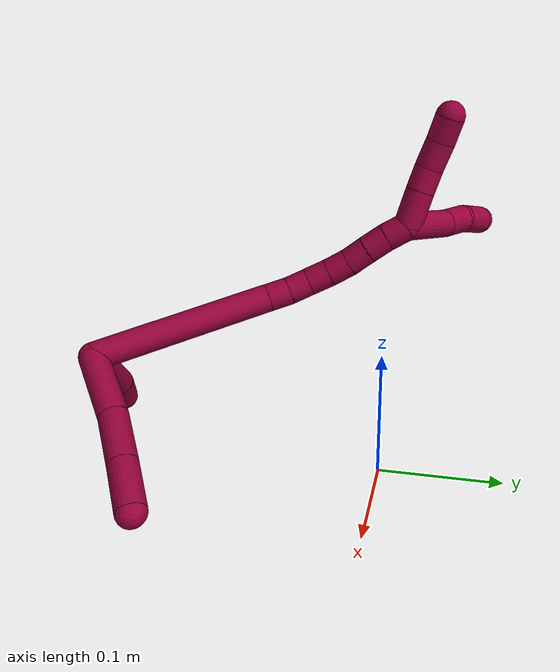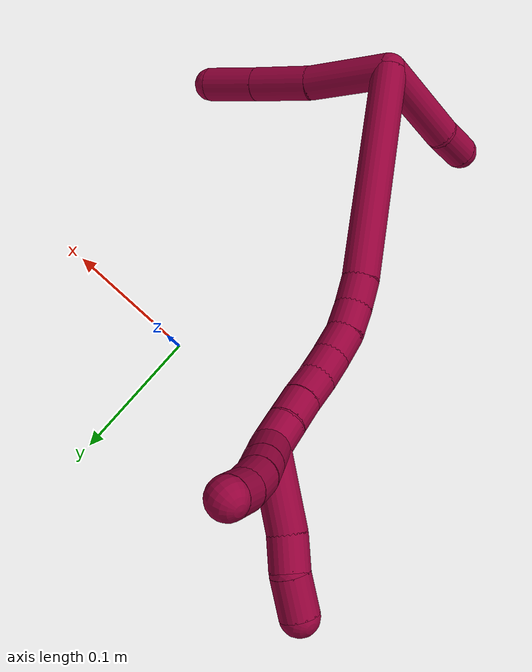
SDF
<sdf version="1.7">
 <world name="default">
  <model name="8">
   <static>0</static>
   <link name="8">
    <collision name="collision-cylinder-e_1_2_8">
     <pose>-0.00885 0.014765 -0.026249 -2.62919 -0.285815 1.00458</pose>
     <geometry><cylinder><radius>0.0125</radius><length>0.062781</length></cylinder></geometry>
     <surface>
      <friction><ode><mu>1.16</mu><mu2>1.16</mu2><slip1>0</slip1><slip2>0</slip2></ode></friction>
      <contact><ode><kp>1e+06</kp><kd>1</kd><max_vel>0</max_vel><min_depth>0.001</min_depth></ode></contact>
     </surface>
    </collision>
    <visual name="visual-cylinder-e_1_2_8">
     <pose>-0.00885 0.014765 -0.026249 -2.62919 -0.285815 1.00458</pose>
     <geometry><cylinder><radius>0.0125</radius><length>0.062781</length></cylinder></geometry>
     <material><ambient>0.584314 0 0.227451 1</ambient></material>
    </visual>
    <collision name="collision-cylinder-e_2_8_9">
     <pose>-0.021704 0.039766 -0.072588 -2.67041 -0.175743 0.703483</pose>
     <geometry><cylinder><radius>0.0125</radius><length>0.045799</length></cylinder></geometry>
     <surface>
      <friction><ode><mu>1.16</mu><mu2>1.16</mu2><slip1>0</slip1><slip2>0</slip2></ode></friction>
      <contact><ode><kp>1e+06</kp><kd>1</kd><max_vel>0</max_vel><min_depth>0.001</min_depth></ode></contact>
     </surface>
    </collision>
    <visual name="visual-cylinder-e_2_8_9">
     <pose>-0.021704 0.039766 -0.072588 -2.67041 -0.175743 0.703483</pose>
     <geometry><cylinder><radius>0.0125</radius><length>0.045799</length></cylinder></geometry>
     <material><ambient>0.584314 0 0.227451 1</ambient></material>
    </visual>
    <collision name="collision-cylinder-e_3_9_6">
     <pose>-0.029097 0.058977 -0.111031 -2.68669 -0.164365 0.683785</pose>
     <geometry><cylinder><radius>0.0125</radius><length>0.041421</length></cylinder></geometry>
     <surface>
      <friction><ode><mu>1.16</mu><mu2>1.16</mu2><slip1>0</slip1><slip2>0</slip2></ode></friction>
      <contact><ode><kp>1e+06</kp><kd>1</kd><max_vel>0</max_vel><min_depth>0.001</min_depth></ode></contact>
     </surface>
    </collision>
    <visual name="visual-cylinder-e_3_9_6">
     <pose>-0.029097 0.058977 -0.111031 -2.68669 -0.164365 0.683785</pose>
     <geometry><cylinder><radius>0.0125</radius><length>0.041421</length></cylinder></geometry>
     <material><ambient>0.584314 0 0.227451 1</ambient></material>
    </visual>
    <collision name="collision-cylinder-e_1_2_10">
     <pose>-0.02747 -0.021138 0.005791 1.30341 -0.897363 -0.703973</pose>
     <geometry><cylinder><radius>0.0125</radius><length>0.070285</length></cylinder></geometry>
     <surface>
      <friction><ode><mu>1.16</mu><mu2>1.16</mu2><slip1>0</slip1><slip2>0</slip2></ode></friction>
      <contact><ode><kp>1e+06</kp><kd>1</kd><max_vel>0</max_vel><min_depth>0.001</min_depth></ode></contact>
     </surface>
    </collision>
    <visual name="visual-cylinder-e_1_2_10">
     <pose>-0.02747 -0.021138 0.005791 1.30341 -0.897363 -0.703973</pose>
     <geometry><cylinder><radius>0.0125</radius><length>0.070285</length></cylinder></geometry>
     <material><ambient>0.584314 0 0.227451 1</ambient></material>
    </visual>
    <collision name="collision-cylinder-e_2_10_5">
     <pose>-0.065499 -0.052729 0.011429 1.58544 -0.790448 -0.800908</pose>
     <geometry><cylinder><radius>0.0125</radius><length>0.029715</length></cylinder></geometry>
     <surface>
      <friction><ode><mu>1.16</mu><mu2>1.16</mu2><slip1>0</slip1><slip2>0</slip2></ode></friction>
      <contact><ode><kp>1e+06</kp><kd>1</kd><max_vel>0</max_vel><min_depth>0.001</min_depth></ode></contact>
     </surface>
    </collision>
    <visual name="visual-cylinder-e_2_10_5">
     <pose>-0.065499 -0.052729 0.011429 1.58544 -0.790448 -0.800908</pose>
     <geometry><cylinder><radius>0.0125</radius><length>0.029715</length></cylinder></geometry>
     <material><ambient>0.584314 0 0.227451 1</ambient></material>
    </visual>
    <collision name="collision-cylinder-e_1_2_11">
     <pose>-0.048395 0.046567 0.042671 -0.829024 -0.653794 0.296193</pose>
     <geometry><cylinder><radius>0.0125</radius><length>0.15914</length></cylinder></geometry>
     <surface>
      <friction><ode><mu>1.16</mu><mu2>1.16</mu2><slip1>0</slip1><slip2>0</slip2></ode></friction>
      <contact><ode><kp>1e+06</kp><kd>1</kd><max_vel>0</max_vel><min_depth>0.001</min_depth></ode></contact>
     </surface>
    </collision>
    <visual name="visual-cylinder-e_1_2_11">
     <pose>-0.048395 0.046567 0.042671 -0.829024 -0.653794 0.296193</pose>
     <geometry><cylinder><radius>0.0125</radius><length>0.15914</length></cylinder></geometry>
     <material><ambient>0.584314 0 0.227451 1</ambient></material>
    </visual>
    <collision name="collision-cylinder-e_2_11_12">
     <pose>-0.102457 0.100036 0.090215 -0.956063 -0.590917 0.312816</pose>
     <geometry><cylinder><radius>0.0125</radius><length>0.020347</length></cylinder></geometry>
     <surface>
      <friction><ode><mu>1.16</mu><mu2>1.16</mu2><slip1>0</slip1><slip2>0</slip2></ode></friction>
      <contact><ode><kp>1e+06</kp><kd>1</kd><max_vel>0</max_vel><min_depth>0.001</min_depth></ode></contact>
     </surface>
    </collision>
    <visual name="visual-cylinder-e_2_11_12">
     <pose>-0.102457 0.100036 0.090215 -0.956063 -0.590917 0.312816</pose>
     <geometry><cylinder><radius>0.0125</radius><length>0.020347</length></cylinder></geometry>
     <material><ambient>0.584314 0 0.227451 1</ambient></material>
    </visual>
    <collision name="collision-cylinder-e_3_12_13">
     <pose>-0.11241 0.114446 0.100123 -0.980082 -0.442612 0.238896</pose>
     <geometry><cylinder><radius>0.0125</radius><length>0.020009</length></cylinder></geometry>
     <surface>
      <friction><ode><mu>1.16</mu><mu2>1.16</mu2><slip1>0</slip1><slip2>0</slip2></ode></friction>
      <contact><ode><kp>1e+06</kp><kd>1</kd><max_vel>0</max_vel><min_depth>0.001</min_depth></ode></contact>
     </surface>
    </collision>
    <visual name="visual-cylinder-e_3_12_13">
     <pose>-0.11241 0.114446 0.100123 -0.980082 -0.442612 0.238896</pose>
     <geometry><cylinder><radius>0.0125</radius><length>0.020009</length></cylinder></geometry>
     <material><ambient>0.584314 0 0.227451 1</ambient></material>
    </visual>
    <collision name="collision-cylinder-e_4_13_14">
     <pose>-0.120033 0.130718 0.109224 -1.13637 -0.332641 0.213527</pose>
     <geometry><cylinder><radius>0.0125</radius><length>0.020443</length></cylinder></geometry>
     <surface>
      <friction><ode><mu>1.16</mu><mu2>1.16</mu2><slip1>0</slip1><slip2>0</slip2></ode></friction>
      <contact><ode><kp>1e+06</kp><kd>1</kd><max_vel>0</max_vel><min_depth>0.001</min_depth></ode></contact>
     </surface>
    </collision>
    <visual name="visual-cylinder-e_4_13_14">
     <pose>-0.120033 0.130718 0.109224 -1.13637 -0.332641 0.213527</pose>
     <geometry><cylinder><radius>0.0125</radius><length>0.020443</length></cylinder></geometry>
     <material><ambient>0.584314 0 0.227451 1</ambient></material>
    </visual>
    <collision name="collision-cylinder-e_5_14_15">
     <pose>-0.125849 0.148275 0.117368 -1.13661 -0.250363 0.160372</pose>
     <geometry><cylinder><radius>0.0125</radius><length>0.020009</length></cylinder></geometry>
     <surface>
      <friction><ode><mu>1.16</mu><mu2>1.16</mu2><slip1>0</slip1><slip2>0</slip2></ode></friction>
      <contact><ode><kp>1e+06</kp><kd>1</kd><max_vel>0</max_vel><min_depth>0.001</min_depth></ode></contact>
     </surface>
    </collision>
    <visual name="visual-cylinder-e_5_14_15">
     <pose>-0.125849 0.148275 0.117368 -1.13661 -0.250363 0.160372</pose>
     <geometry><cylinder><radius>0.0125</radius><length>0.020009</length></cylinder></geometry>
     <material><ambient>0.584314 0 0.227451 1</ambient></material>
    </visual>
    <collision name="collision-cylinder-e_6_15_16">
     <pose>-0.129453 0.166034 0.125734 -1.12465 -0.112791 0.071125</pose>
     <geometry><cylinder><radius>0.0125</radius><length>0.020005</length></cylinder></geometry>
     <surface>
      <friction><ode><mu>1.16</mu><mu2>1.16</mu2><slip1>0</slip1><slip2>0</slip2></ode></friction>
      <contact><ode><kp>1e+06</kp><kd>1</kd><max_vel>0</max_vel><min_depth>0.001</min_depth></ode></contact>
     </surface>
    </collision>
    <visual name="visual-cylinder-e_6_15_16">
     <pose>-0.129453 0.166034 0.125734 -1.12465 -0.112791 0.071125</pose>
     <geometry><cylinder><radius>0.0125</radius><length>0.020005</length></cylinder></geometry>
     <material><ambient>0.584314 0 0.227451 1</ambient></material>
    </visual>
    <collision name="collision-cylinder-e_7_16_17">
     <pose>-0.132202 0.183788 0.134522 -1.09762 -0.162927 0.099763</pose>
     <geometry><cylinder><radius>0.0125</radius><length>0.020011</length></cylinder></geometry>
     <surface>
      <friction><ode><mu>1.16</mu><mu2>1.16</mu2><slip1>0</slip1><slip2>0</slip2></ode></friction>
      <contact><ode><kp>1e+06</kp><kd>1</kd><max_vel>0</max_vel><min_depth>0.001</min_depth></ode></contact>
     </surface>
    </collision>
    <visual name="visual-cylinder-e_7_16_17">
     <pose>-0.132202 0.183788 0.134522 -1.09762 -0.162927 0.099763</pose>
     <geometry><cylinder><radius>0.0125</radius><length>0.020011</length></cylinder></geometry>
     <material><ambient>0.584314 0 0.227451 1</ambient></material>
    </visual>
    <collision name="collision-cylinder-e_8_17_1">
     <pose>-0.136384 0.201402 0.143012 -1.14609 -0.258304 0.167219</pose>
     <geometry><cylinder><radius>0.0125</radius><length>0.020036</length></cylinder></geometry>
     <surface>
      <friction><ode><mu>1.16</mu><mu2>1.16</mu2><slip1>0</slip1><slip2>0</slip2></ode></friction>
      <contact><ode><kp>1e+06</kp><kd>1</kd><max_vel>0</max_vel><min_depth>0.001</min_depth></ode></contact>
     </surface>
    </collision>
    <visual name="visual-cylinder-e_8_17_1">
     <pose>-0.136384 0.201402 0.143012 -1.14609 -0.258304 0.167219</pose>
     <geometry><cylinder><radius>0.0125</radius><length>0.020036</length></cylinder></geometry>
     <material><ambient>0.584314 0 0.227451 1</ambient></material>
    </visual>
    <collision name="collision-cylinder-e_1_1_18">
     <pose>-0.132719 0.220367 0.15803 -0.743499 0.393782 -0.155229</pose>
     <geometry><cylinder><radius>0.0125</radius><length>0.032443</length></cylinder></geometry>
     <surface>
      <friction><ode><mu>1.16</mu><mu2>1.16</mu2><slip1>0</slip1><slip2>0</slip2></ode></friction>
      <contact><ode><kp>1e+06</kp><kd>1</kd><max_vel>0</max_vel><min_depth>0.001</min_depth></ode></contact>
     </surface>
    </collision>
    <visual name="visual-cylinder-e_1_1_18">
     <pose>-0.132719 0.220367 0.15803 -0.743499 0.393782 -0.155229</pose>
     <geometry><cylinder><radius>0.0125</radius><length>0.032443</length></cylinder></geometry>
     <material><ambient>0.584314 0 0.227451 1</ambient></material>
    </visual>
    <collision name="collision-cylinder-e_2_18_19">
     <pose>-0.122655 0.237214 0.176158 -0.756872 0.374562 -0.150408</pose>
     <geometry><cylinder><radius>0.0125</radius><length>0.020993</length></cylinder></geometry>
     <surface>
      <friction><ode><mu>1.16</mu><mu2>1.16</mu2><slip1>0</slip1><slip2>0</slip2></ode></friction>
      <contact><ode><kp>1e+06</kp><kd>1</kd><max_vel>0</max_vel><min_depth>0.001</min_depth></ode></contact>
     </surface>
    </collision>
    <visual name="visual-cylinder-e_2_18_19">
     <pose>-0.122655 0.237214 0.176158 -0.756872 0.374562 -0.150408</pose>
     <geometry><cylinder><radius>0.0125</radius><length>0.020993</length></cylinder></geometry>
     <material><ambient>0.584314 0 0.227451 1</ambient></material>
    </visual>
    <collision name="collision-cylinder-e_3_19_20">
     <pose>-0.113929 0.252728 0.190249 -0.899942 0.409958 -0.200167</pose>
     <geometry><cylinder><radius>0.0125</radius><length>0.024517</length></cylinder></geometry>
     <surface>
      <friction><ode><mu>1.16</mu><mu2>1.16</mu2><slip1>0</slip1><slip2>0</slip2></ode></friction>
      <contact><ode><kp>1e+06</kp><kd>1</kd><max_vel>0</max_vel><min_depth>0.001</min_depth></ode></contact>
     </surface>
    </collision>
    <visual name="visual-cylinder-e_3_19_20">
     <pose>-0.113929 0.252728 0.190249 -0.899942 0.409958 -0.200167</pose>
     <geometry><cylinder><radius>0.0125</radius><length>0.024517</length></cylinder></geometry>
     <material><ambient>0.584314 0 0.227451 1</ambient></material>
    </visual>
    <collision name="collision-cylinder-e_4_20_4">
     <pose>-0.103533 0.269495 0.20251 -0.98588 0.523391 -0.285788</pose>
     <geometry><cylinder><radius>0.0125</radius><length>0.022048</length></cylinder></geometry>
     <surface>
      <friction><ode><mu>1.16</mu><mu2>1.16</mu2><slip1>0</slip1><slip2>0</slip2></ode></friction>
      <contact><ode><kp>1e+06</kp><kd>1</kd><max_vel>0</max_vel><min_depth>0.001</min_depth></ode></contact>
     </surface>
    </collision>
    <visual name="visual-cylinder-e_4_20_4">
     <pose>-0.103533 0.269495 0.20251 -0.98588 0.523391 -0.285788</pose>
     <geometry><cylinder><radius>0.0125</radius><length>0.022048</length></cylinder></geometry>
     <material><ambient>0.584314 0 0.227451 1</ambient></material>
    </visual>
    <collision name="collision-cylinder-e_1_1_21">
     <pose>-0.15984 0.214659 0.16108 -0.305001 -0.955915 0.158897</pose>
     <geometry><cylinder><radius>0.0125</radius><length>0.051164</length></cylinder></geometry>
     <surface>
      <friction><ode><mu>1.16</mu><mu2>1.16</mu2><slip1>0</slip1><slip2>0</slip2></ode></friction>
      <contact><ode><kp>1e+06</kp><kd>1</kd><max_vel>0</max_vel><min_depth>0.001</min_depth></ode></contact>
     </surface>
    </collision>
    <visual name="visual-cylinder-e_1_1_21">
     <pose>-0.15984 0.214659 0.16108 -0.305001 -0.955915 0.158897</pose>
     <geometry><cylinder><radius>0.0125</radius><length>0.051164</length></cylinder></geometry>
     <material><ambient>0.584314 0 0.227451 1</ambient></material>
    </visual>
    <collision name="collision-cylinder-e_2_21_22">
     <pose>-0.188874 0.223219 0.181971 -0.544667 -0.795874 0.233722</pose>
     <geometry><cylinder><radius>0.0125</radius><length>0.022779</length></cylinder></geometry>
     <surface>
      <friction><ode><mu>1.16</mu><mu2>1.16</mu2><slip1>0</slip1><slip2>0</slip2></ode></friction>
      <contact><ode><kp>1e+06</kp><kd>1</kd><max_vel>0</max_vel><min_depth>0.001</min_depth></ode></contact>
     </surface>
    </collision>
    <visual name="visual-cylinder-e_2_21_22">
     <pose>-0.188874 0.223219 0.181971 -0.544667 -0.795874 0.233722</pose>
     <geometry><cylinder><radius>0.0125</radius><length>0.022779</length></cylinder></geometry>
     <material><ambient>0.584314 0 0.227451 1</ambient></material>
    </visual>
    <collision name="collision-cylinder-e_3_22_3">
     <pose>-0.208276 0.228796 0.195171 -0.222951 -1.04436 0.128655</pose>
     <geometry><cylinder><radius>0.0125</radius><length>0.026057</length></cylinder></geometry>
     <surface>
      <friction><ode><mu>1.16</mu><mu2>1.16</mu2><slip1>0</slip1><slip2>0</slip2></ode></friction>
      <contact><ode><kp>1e+06</kp><kd>1</kd><max_vel>0</max_vel><min_depth>0.001</min_depth></ode></contact>
     </surface>
    </collision>
    <visual name="visual-cylinder-e_3_22_3">
     <pose>-0.208276 0.228796 0.195171 -0.222951 -1.04436 0.128655</pose>
     <geometry><cylinder><radius>0.0125</radius><length>0.026057</length></cylinder></geometry>
     <material><ambient>0.584314 0 0.227451 1</ambient></material>
    </visual>
    <collision name="collision-sphere-3">
     <pose>-0.21954 0.230243 0.201556 0 -0 0</pose>
     <geometry><sphere><radius>0.0125</radius></sphere></geometry>
     <surface>
      <friction><ode><mu>1.16</mu><mu2>1.16</mu2><slip1>0</slip1><slip2>0</slip2></ode></friction>
      <contact><ode><kp>1e+06</kp><kd>1</kd><max_vel>0</max_vel><min_depth>0.001</min_depth></ode></contact>
     </surface>
    </collision>
    <visual name="visual-sphere-3">
     <pose>-0.21954 0.230243 0.201556 0 -0 0</pose>
     <geometry><sphere><radius>0.0125</radius></sphere></geometry>
     <material><ambient>0.584314 0 0.227451 1</ambient></material>
    </visual>
    <collision name="collision-sphere-22">
     <pose>-0.197011 0.227348 0.188787 0 -0 0</pose>
     <geometry><sphere><radius>0.0125</radius></sphere></geometry>
     <surface>
      <friction><ode><mu>1.16</mu><mu2>1.16</mu2><slip1>0</slip1><slip2>0</slip2></ode></friction>
      <contact><ode><kp>1e+06</kp><kd>1</kd><max_vel>0</max_vel><min_depth>0.001</min_depth></ode></contact>
     </surface>
    </collision>
    <visual name="visual-sphere-22">
     <pose>-0.197011 0.227348 0.188787 0 -0 0</pose>
     <geometry><sphere><radius>0.0125</radius></sphere></geometry>
     <material><ambient>0.584314 0 0.227451 1</ambient></material>
    </visual>
    <collision name="collision-sphere-21">
     <pose>-0.180736 0.21909 0.175156 0 -0 0</pose>
     <geometry><sphere><radius>0.0125</radius></sphere></geometry>
     <surface>
      <friction><ode><mu>1.16</mu><mu2>1.16</mu2><slip1>0</slip1><slip2>0</slip2></ode></friction>
      <contact><ode><kp>1e+06</kp><kd>1</kd><max_vel>0</max_vel><min_depth>0.001</min_depth></ode></contact>
     </surface>
    </collision>
    <visual name="visual-sphere-21">
     <pose>-0.180736 0.21909 0.175156 0 -0 0</pose>
     <geometry><sphere><radius>0.0125</radius></sphere></geometry>
     <material><ambient>0.584314 0 0.227451 1</ambient></material>
    </visual>
    <collision name="collision-sphere-4">
     <pose>-0.098023 0.277456 0.207782 0 -0 0</pose>
     <geometry><sphere><radius>0.0125</radius></sphere></geometry>
     <surface>
      <friction><ode><mu>1.16</mu><mu2>1.16</mu2><slip1>0</slip1><slip2>0</slip2></ode></friction>
      <contact><ode><kp>1e+06</kp><kd>1</kd><max_vel>0</max_vel><min_depth>0.001</min_depth></ode></contact>
     </surface>
    </collision>
    <visual name="visual-sphere-4">
     <pose>-0.098023 0.277456 0.207782 0 -0 0</pose>
     <geometry><sphere><radius>0.0125</radius></sphere></geometry>
     <material><ambient>0.584314 0 0.227451 1</ambient></material>
    </visual>
    <collision name="collision-sphere-20">
     <pose>-0.109043 0.261534 0.197238 0 -0 0</pose>
     <geometry><sphere><radius>0.0125</radius></sphere></geometry>
     <surface>
      <friction><ode><mu>1.16</mu><mu2>1.16</mu2><slip1>0</slip1><slip2>0</slip2></ode></friction>
      <contact><ode><kp>1e+06</kp><kd>1</kd><max_vel>0</max_vel><min_depth>0.001</min_depth></ode></contact>
     </surface>
    </collision>
    <visual name="visual-sphere-20">
     <pose>-0.109043 0.261534 0.197238 0 -0 0</pose>
     <geometry><sphere><radius>0.0125</radius></sphere></geometry>
     <material><ambient>0.584314 0 0.227451 1</ambient></material>
    </visual>
    <collision name="collision-sphere-5">
     <pose>-0.076058 -0.06318 0.011276 0 -0 0</pose>
     <geometry><sphere><radius>0.0125</radius></sphere></geometry>
     <surface>
      <friction><ode><mu>1.16</mu><mu2>1.16</mu2><slip1>0</slip1><slip2>0</slip2></ode></friction>
      <contact><ode><kp>1e+06</kp><kd>1</kd><max_vel>0</max_vel><min_depth>0.001</min_depth></ode></contact>
     </surface>
    </collision>
    <visual name="visual-sphere-5">
     <pose>-0.076058 -0.06318 0.011276 0 -0 0</pose>
     <geometry><sphere><radius>0.0125</radius></sphere></geometry>
     <material><ambient>0.584314 0 0.227451 1</ambient></material>
    </visual>
    <collision name="collision-sphere-10">
     <pose>-0.05494 -0.042277 0.011582 0 -0 0</pose>
     <geometry><sphere><radius>0.0125</radius></sphere></geometry>
     <surface>
      <friction><ode><mu>1.16</mu><mu2>1.16</mu2><slip1>0</slip1><slip2>0</slip2></ode></friction>
      <contact><ode><kp>1e+06</kp><kd>1</kd><max_vel>0</max_vel><min_depth>0.001</min_depth></ode></contact>
     </surface>
    </collision>
    <visual name="visual-sphere-10">
     <pose>-0.05494 -0.042277 0.011582 0 -0 0</pose>
     <geometry><sphere><radius>0.0125</radius></sphere></geometry>
     <material><ambient>0.584314 0 0.227451 1</ambient></material>
    </visual>
    <collision name="collision-sphere-6">
     <pose>-0.032485 0.067954 -0.129384 0 -0 0</pose>
     <geometry><sphere><radius>0.0125</radius></sphere></geometry>
     <surface>
      <friction><ode><mu>1.16</mu><mu2>1.16</mu2><slip1>0</slip1><slip2>0</slip2></ode></friction>
      <contact><ode><kp>1e+06</kp><kd>1</kd><max_vel>0</max_vel><min_depth>0.001</min_depth></ode></contact>
     </surface>
    </collision>
    <visual name="visual-sphere-6">
     <pose>-0.032485 0.067954 -0.129384 0 -0 0</pose>
     <geometry><sphere><radius>0.0125</radius></sphere></geometry>
     <material><ambient>0.584314 0 0.227451 1</ambient></material>
    </visual>
    <collision name="collision-sphere-9">
     <pose>-0.025708 0.05 -0.092677 0 -0 0</pose>
     <geometry><sphere><radius>0.0125</radius></sphere></geometry>
     <surface>
      <friction><ode><mu>1.16</mu><mu2>1.16</mu2><slip1>0</slip1><slip2>0</slip2></ode></friction>
      <contact><ode><kp>1e+06</kp><kd>1</kd><max_vel>0</max_vel><min_depth>0.001</min_depth></ode></contact>
     </surface>
    </collision>
    <visual name="visual-sphere-9">
     <pose>-0.025708 0.05 -0.092677 0 -0 0</pose>
     <geometry><sphere><radius>0.0125</radius></sphere></geometry>
     <material><ambient>0.584314 0 0.227451 1</ambient></material>
    </visual>
    <collision name="collision-sphere-2">
     <geometry><sphere><radius>0.0125</radius></sphere></geometry>
     <surface>
      <friction><ode><mu>1.16</mu><mu2>1.16</mu2><slip1>0</slip1><slip2>0</slip2></ode></friction>
      <contact><ode><kp>1e+06</kp><kd>1</kd><max_vel>0</max_vel><min_depth>0.001</min_depth></ode></contact>
     </surface>
    </collision>
    <visual name="visual-sphere-2">
     <geometry><sphere><radius>0.0125</radius></sphere></geometry>
     <material><ambient>0.584314 0 0.227451 1</ambient></material>
    </visual>
    <collision name="collision-sphere-19">
     <pose>-0.118815 0.243921 0.18326 0 -0 0</pose>
     <geometry><sphere><radius>0.0125</radius></sphere></geometry>
     <surface>
      <friction><ode><mu>1.16</mu><mu2>1.16</mu2><slip1>0</slip1><slip2>0</slip2></ode></friction>
      <contact><ode><kp>1e+06</kp><kd>1</kd><max_vel>0</max_vel><min_depth>0.001</min_depth></ode></contact>
     </surface>
    </collision>
    <visual name="visual-sphere-19">
     <pose>-0.118815 0.243921 0.18326 0 -0 0</pose>
     <geometry><sphere><radius>0.0125</radius></sphere></geometry>
     <material><ambient>0.584314 0 0.227451 1</ambient></material>
    </visual>
    <collision name="collision-sphere-8">
     <pose>-0.0177 0.029531 -0.052498 0 -0 0</pose>
     <geometry><sphere><radius>0.0125</radius></sphere></geometry>
     <surface>
      <friction><ode><mu>1.16</mu><mu2>1.16</mu2><slip1>0</slip1><slip2>0</slip2></ode></friction>
      <contact><ode><kp>1e+06</kp><kd>1</kd><max_vel>0</max_vel><min_depth>0.001</min_depth></ode></contact>
     </surface>
    </collision>
    <visual name="visual-sphere-8">
     <pose>-0.0177 0.029531 -0.052498 0 -0 0</pose>
     <geometry><sphere><radius>0.0125</radius></sphere></geometry>
     <material><ambient>0.584314 0 0.227451 1</ambient></material>
    </visual>
    <collision name="collision-sphere-11">
     <pose>-0.096789 0.093134 0.085343 0 -0 0</pose>
     <geometry><sphere><radius>0.0125</radius></sphere></geometry>
     <surface>
      <friction><ode><mu>1.16</mu><mu2>1.16</mu2><slip1>0</slip1><slip2>0</slip2></ode></friction>
      <contact><ode><kp>1e+06</kp><kd>1</kd><max_vel>0</max_vel><min_depth>0.001</min_depth></ode></contact>
     </surface>
    </collision>
    <visual name="visual-sphere-11">
     <pose>-0.096789 0.093134 0.085343 0 -0 0</pose>
     <geometry><sphere><radius>0.0125</radius></sphere></geometry>
     <material><ambient>0.584314 0 0.227451 1</ambient></material>
    </visual>
    <collision name="collision-sphere-12">
     <pose>-0.108125 0.106937 0.095088 0 -0 0</pose>
     <geometry><sphere><radius>0.0125</radius></sphere></geometry>
     <surface>
      <friction><ode><mu>1.16</mu><mu2>1.16</mu2><slip1>0</slip1><slip2>0</slip2></ode></friction>
      <contact><ode><kp>1e+06</kp><kd>1</kd><max_vel>0</max_vel><min_depth>0.001</min_depth></ode></contact>
     </surface>
    </collision>
    <visual name="visual-sphere-12">
     <pose>-0.108125 0.106937 0.095088 0 -0 0</pose>
     <geometry><sphere><radius>0.0125</radius></sphere></geometry>
     <material><ambient>0.584314 0 0.227451 1</ambient></material>
    </visual>
    <collision name="collision-sphere-13">
     <pose>-0.116695 0.121954 0.105158 0 -0 0</pose>
     <geometry><sphere><radius>0.0125</radius></sphere></geometry>
     <surface>
      <friction><ode><mu>1.16</mu><mu2>1.16</mu2><slip1>0</slip1><slip2>0</slip2></ode></friction>
      <contact><ode><kp>1e+06</kp><kd>1</kd><max_vel>0</max_vel><min_depth>0.001</min_depth></ode></contact>
     </surface>
    </collision>
    <visual name="visual-sphere-13">
     <pose>-0.116695 0.121954 0.105158 0 -0 0</pose>
     <geometry><sphere><radius>0.0125</radius></sphere></geometry>
     <material><ambient>0.584314 0 0.227451 1</ambient></material>
    </visual>
    <collision name="collision-sphere-14">
     <pose>-0.12337 0.139481 0.113291 0 -0 0</pose>
     <geometry><sphere><radius>0.0125</radius></sphere></geometry>
     <surface>
      <friction><ode><mu>1.16</mu><mu2>1.16</mu2><slip1>0</slip1><slip2>0</slip2></ode></friction>
      <contact><ode><kp>1e+06</kp><kd>1</kd><max_vel>0</max_vel><min_depth>0.001</min_depth></ode></contact>
     </surface>
    </collision>
    <visual name="visual-sphere-14">
     <pose>-0.12337 0.139481 0.113291 0 -0 0</pose>
     <geometry><sphere><radius>0.0125</radius></sphere></geometry>
     <material><ambient>0.584314 0 0.227451 1</ambient></material>
    </visual>
    <collision name="collision-sphere-15">
     <pose>-0.128328 0.157068 0.121445 0 -0 0</pose>
     <geometry><sphere><radius>0.0125</radius></sphere></geometry>
     <surface>
      <friction><ode><mu>1.16</mu><mu2>1.16</mu2><slip1>0</slip1><slip2>0</slip2></ode></friction>
      <contact><ode><kp>1e+06</kp><kd>1</kd><max_vel>0</max_vel><min_depth>0.001</min_depth></ode></contact>
     </surface>
    </collision>
    <visual name="visual-sphere-15">
     <pose>-0.128328 0.157068 0.121445 0 -0 0</pose>
     <geometry><sphere><radius>0.0125</radius></sphere></geometry>
     <material><ambient>0.584314 0 0.227451 1</ambient></material>
    </visual>
    <collision name="collision-sphere-16">
     <pose>-0.130579 0.175 0.130023 0 -0 0</pose>
     <geometry><sphere><radius>0.0125</radius></sphere></geometry>
     <surface>
      <friction><ode><mu>1.16</mu><mu2>1.16</mu2><slip1>0</slip1><slip2>0</slip2></ode></friction>
      <contact><ode><kp>1e+06</kp><kd>1</kd><max_vel>0</max_vel><min_depth>0.001</min_depth></ode></contact>
     </surface>
    </collision>
    <visual name="visual-sphere-16">
     <pose>-0.130579 0.175 0.130023 0 -0 0</pose>
     <geometry><sphere><radius>0.0125</radius></sphere></geometry>
     <material><ambient>0.584314 0 0.227451 1</ambient></material>
    </visual>
    <collision name="collision-sphere-17">
     <pose>-0.133825 0.192577 0.139021 0 -0 0</pose>
     <geometry><sphere><radius>0.0125</radius></sphere></geometry>
     <surface>
      <friction><ode><mu>1.16</mu><mu2>1.16</mu2><slip1>0</slip1><slip2>0</slip2></ode></friction>
      <contact><ode><kp>1e+06</kp><kd>1</kd><max_vel>0</max_vel><min_depth>0.001</min_depth></ode></contact>
     </surface>
    </collision>
    <visual name="visual-sphere-17">
     <pose>-0.133825 0.192577 0.139021 0 -0 0</pose>
     <geometry><sphere><radius>0.0125</radius></sphere></geometry>
     <material><ambient>0.584314 0 0.227451 1</ambient></material>
    </visual>
    <collision name="collision-sphere-1">
     <pose>-0.138943 0.210227 0.147003 0 -0 0</pose>
     <geometry><sphere><radius>0.0125</radius></sphere></geometry>
     <surface>
      <friction><ode><mu>1.16</mu><mu2>1.16</mu2><slip1>0</slip1><slip2>0</slip2></ode></friction>
      <contact><ode><kp>1e+06</kp><kd>1</kd><max_vel>0</max_vel><min_depth>0.001</min_depth></ode></contact>
     </surface>
    </collision>
    <visual name="visual-sphere-1">
     <pose>-0.138943 0.210227 0.147003 0 -0 0</pose>
     <geometry><sphere><radius>0.0125</radius></sphere></geometry>
     <material><ambient>0.584314 0 0.227451 1</ambient></material>
    </visual>
    <collision name="collision-sphere-18">
     <pose>-0.126495 0.230506 0.169057 0 -0 0</pose>
     <geometry><sphere><radius>0.0125</radius></sphere></geometry>
     <surface>
      <friction><ode><mu>1.16</mu><mu2>1.16</mu2><slip1>0</slip1><slip2>0</slip2></ode></friction>
      <contact><ode><kp>1e+06</kp><kd>1</kd><max_vel>0</max_vel><min_depth>0.001</min_depth></ode></contact>
     </surface>
    </collision>
    <visual name="visual-sphere-18">
     <pose>-0.126495 0.230506 0.169057 0 -0 0</pose>
     <geometry><sphere><radius>0.0125</radius></sphere></geometry>
     <material><ambient>0.584314 0 0.227451 1</ambient></material>
    </visual>
    <inertial>
     <pose>-0.081961 0.102459 0.066514 0 -0 0</pose>
     <mass>0.75</mass>
     <inertia>
      <ixx>0.000403</ixx>
      <ixy>0</ixy>
      <ixz>0</ixz>
      <iyy>0.000419</iyy>
      <iyz>0</iyz>
      <izz>5.4e-05</izz>
     </inertia>
    </inertial>
   </link>
   <pose>0.011455 -0.241735 0.083551 0.592379 -0.672244 -0.806973</pose>
  </model>
 </world>
</sdf>
